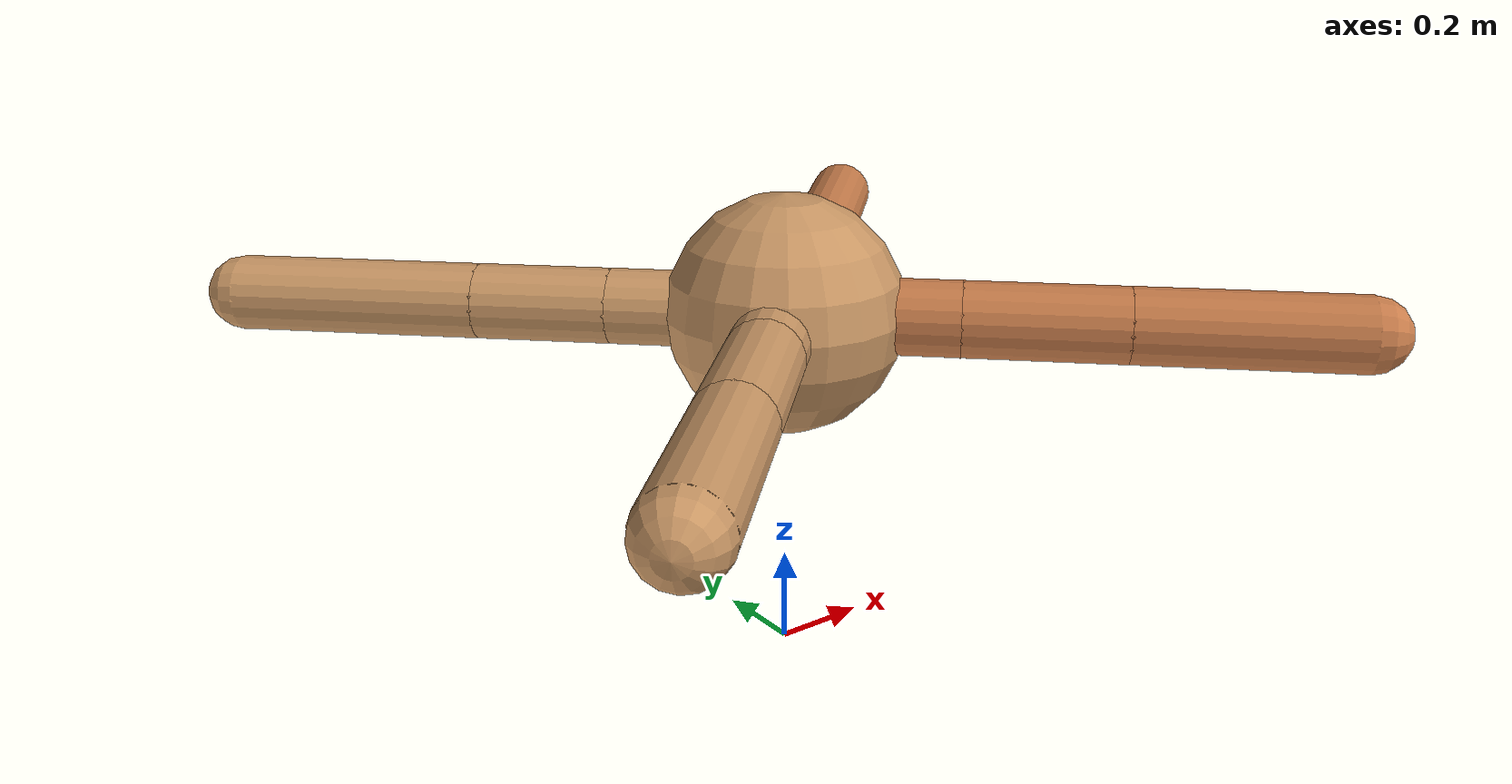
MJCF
<mujoco model="ant">
  <compiler angle="degree" coordinate="local" inertiafromgeom="true" />
  <option integrator="RK4" timestep="0.01" />
  <custom>
    <numeric data="0.0 0.0 0.55 1.0 0.0 0.0 0.0 0.0 1.0 0.0 -1.0 0.0 -1.0 0.0 1.0" name="init_qpos" />
  </custom>
  <default>
    <joint armature="1" damping="1" limited="true" />
    <geom conaffinity="0" condim="3" density="5.0" friction="1.5 0.1 0.1" margin="0.01" rgba="0.8 0.6 0.4 1" />
  </default>
  <worldbody>
    <body name="torso" pos="0 0 0.75">
      <geom name="torso_geom" pos="0 0 0" size="0.25" type="sphere" />

      <body name="front_left_leg" pos="0 0 0">
        <geom fromto="0.0 0.0 0.0 0.23120376123082276 0.23120376123082276 0.0" name="aux_1_geom" size="0.08" type="capsule" rgba=".8 .5 .3 1" />
        <body name="aux_1" pos="0.23120376123082276 0.23120376123082276 0.0">
          <joint axis="0 0 1" name="hip_1" pos="0.0 0.0 0.0" range="-40 40" type="hinge" />
          <geom fromto="0.0 0.0 0.0 0.2126922024731302 0.2126922024731302 0.0" name="left_leg_geom" size="0.08" type="capsule" rgba=".8 .5 .3 1" />
          <body pos="0.2126922024731302 0.2126922024731302 0.0" name="front_left_foot">
            <joint axis="-1 1 0" name="ankle_1" pos="0.0 0.0 0.0" range="30 100" type="hinge" />
            <geom fromto="0.0 0.0 0.0 0.4136067622420564 0.4136067622420564 0.0" name="left_ankle_geom" size="0.08" type="capsule" rgba=".8 .5 .3 1" />
          </body>
        </body>
      </body>
      <body name="front_right_leg" pos="0 0 0">
        <geom fromto="0.0 0.0 0.0 -0.25934790967823435 0.25934790967823435 0.0" name="aux_2_geom" size="0.08" type="capsule" />
        <body name="aux_2" pos="-0.25934790967823435 0.25934790967823435 0.0">
          <joint axis="0 0 1" name="hip_2" pos="0.0 0.0 0.0" range="-40 40" type="hinge" />
          <geom fromto="0.0 0.0 0.0 -0.20159802375713368 0.20159802375713368 0.0" name="right_leg_geom" size="0.08" type="capsule" />
          <body pos="-0.20159802375713368 0.20159802375713368 0.0" name="front_right_foot">
            <joint axis="1 1 0" name="ankle_2" pos="0.0 0.0 0.0" range="-100 -30" type="hinge" />
            <geom fromto="0.0 0.0 0.0 -0.3706753633986477 0.3706753633986477 0.0" name="right_ankle_geom" size="0.08" type="capsule" />
          </body>
        </body>
      </body>
      <body name="left_back_leg" pos="0 0 0">
        <geom fromto="0.0 0.0 0.0 -0.2164540684088408 -0.2164540684088408 0.0" name="aux_3_geom" size="0.08" type="capsule" />
        <body name="aux_3" pos="-0.2164540684088408 -0.2164540684088408 0.0">
          <joint axis="0 0 1" name="hip_3" pos="0.0 0.0 0.0" range="-40 40" type="hinge" />
          <geom fromto="0.0 0.0 0.0 -0.24447501275296313 -0.24447501275296313 0.0" name="back_leg_geom" size="0.08" type="capsule" />
          <body pos="-0.24447501275296313 -0.24447501275296313 0.0" name="left_back_foot">
            <joint axis="-1 1 0" name="ankle_3" pos="0.0 0.0 0.0" range="-100 -30" type="hinge" />
            <geom fromto="0.0 0.0 0.0 -0.3005002502894392 -0.3005002502894392 0.0" name="third_ankle_geom" size="0.08" type="capsule" />
          </body>
        </body>
      </body>
      <body name="right_back_leg" pos="0 0 0">
        <geom fromto="0.0 0.0 0.0 0.2562503001064597 -0.2562503001064597 0.0" name="aux_4_geom" size="0.08" type="capsule" rgba=".8 .5 .3 1" />
        <body name="aux_4" pos="0.2562503001064597 -0.2562503001064597 0.0">
          <joint axis="0 0 1" name="hip_4" pos="0.0 0.0 0.0" range="-40 40" type="hinge" />
          <geom fromto="0.0 0.0 0.0 0.23665471538532168 -0.23665471538532168 0.0" name="rightback_leg_geom" size="0.08" type="capsule" rgba=".8 .5 .3 1" />
          <body pos="0.23665471538532168 -0.23665471538532168 0.0" name="right_back_foot">
            <joint axis="1 1 0" name="ankle_4" pos="0.0 0.0 0.0" range="30 100" type="hinge" />
            <geom fromto="0.0 0.0 0.0 0.3287037929459595 -0.3287037929459595 0.0" name="fourth_ankle_geom" size="0.08" type="capsule" rgba=".8 .5 .3 1" />
          </body>
        </body>
      </body>
    </body>
  </worldbody>
  <actuator>
    <motor ctrllimited="true" ctrlrange="-1.0 1.0" joint="hip_4" gear="150" />
    <motor ctrllimited="true" ctrlrange="-1.0 1.0" joint="ankle_4" gear="150" />
    <motor ctrllimited="true" ctrlrange="-1.0 1.0" joint="hip_1" gear="150" />
    <motor ctrllimited="true" ctrlrange="-1.0 1.0" joint="ankle_1" gear="150" />
    <motor ctrllimited="true" ctrlrange="-1.0 1.0" joint="hip_2" gear="150" />
    <motor ctrllimited="true" ctrlrange="-1.0 1.0" joint="ankle_2" gear="150" />
    <motor ctrllimited="true" ctrlrange="-1.0 1.0" joint="hip_3" gear="150" />
    <motor ctrllimited="true" ctrlrange="-1.0 1.0" joint="ankle_3" gear="150" />
  </actuator>
</mujoco>
